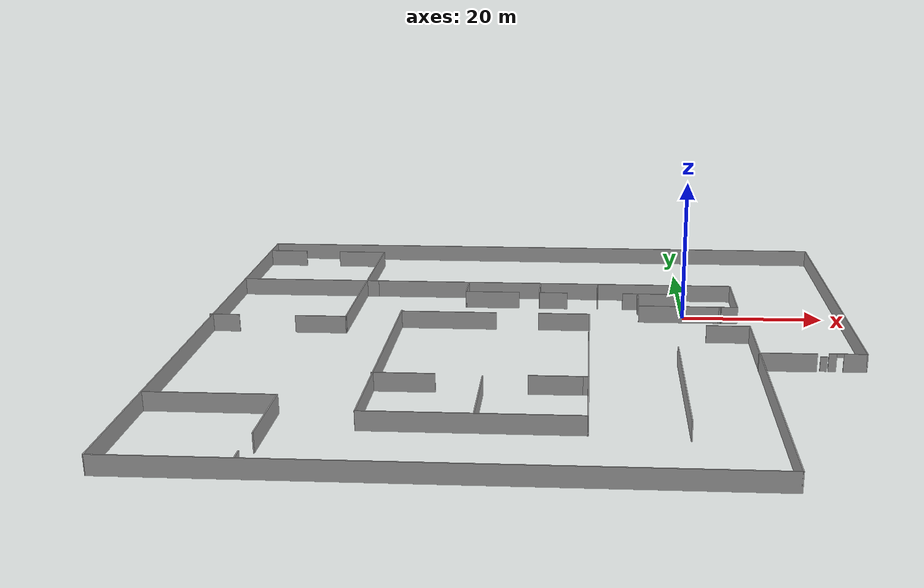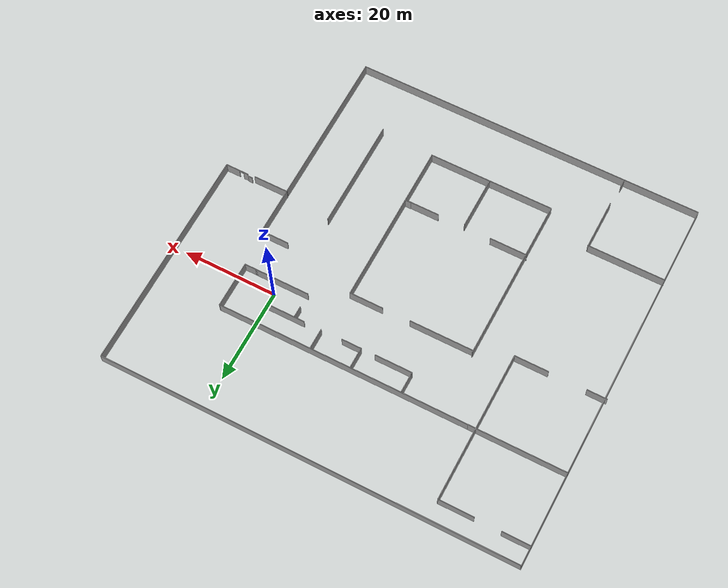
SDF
<?xml version='1.0'?>
<sdf version='1.6'>
  <model name='factory'>
    <pose frame=''>-22.3376 -13.1793 0 0 -0 0</pose>
    <link name='Door_1'>
      <collision name='Door_1_Collision'>
        <geometry>
          <box>
            <size>0.9 0.17 2</size>
          </box>
        </geometry>
        <pose frame=''>0 0 1 0 -0 0</pose>
      </collision>
      <visual name='Door_1_Visual'>
        <pose frame=''>0 0 1 0 -0 0</pose>
        <geometry>
          <box>
            <size>0.9 0.17 2</size>
          </box>
        </geometry>
        <material>
          <script>
            <uri>file://media/materials/scripts/gazebo.material</uri>
            <name>Gazebo/Grey</name>
          </script>
        </material>
      </visual>
      <pose frame=''>39.0036 -6.7146 0 0 -0 0</pose>
    </link>
    <link name='Wall_115'>
      <collision name='Wall_115_Collision'>
        <geometry>
          <box>
            <size>11.25 0.15 2.5</size>
          </box>
        </geometry>
        <pose frame=''>0 0 1.25 0 -0 0</pose>
      </collision>
      <visual name='Wall_115_Visual'>
        <pose frame=''>0 0 1.25 0 -0 0</pose>
        <geometry>
          <box>
            <size>11.25 0.15 2.5</size>
          </box>
        </geometry>
        <material>
          <script>
            <uri>file://media/materials/scripts/gazebo.material</uri>
            <name>Gazebo/Grey</name>
          </script>
          <ambient>1 1 1 1</ambient>
        </material>
        <meta>
          <layer>0</layer>
        </meta>
      </visual>
      <pose frame=''>-4.18518 -22.1969 0 0 -0 1.5708</pose>
    </link>
    <link name='Wall_117'>
      <collision name='Wall_117_Collision'>
        <geometry>
          <box>
            <size>1.25 0.15 2.5</size>
          </box>
        </geometry>
        <pose frame=''>0 0 1.25 0 -0 0</pose>
      </collision>
      <visual name='Wall_117_Visual'>
        <pose frame=''>0 0 1.25 0 -0 0</pose>
        <geometry>
          <box>
            <size>1.25 0.15 2.5</size>
          </box>
        </geometry>
        <material>
          <script>
            <uri>file://media/materials/scripts/gazebo.material</uri>
            <name>Gazebo/Grey</name>
          </script>
          <ambient>1 1 1 1</ambient>
        </material>
        <meta>
          <layer>0</layer>
        </meta>
      </visual>
      <pose frame=''>8.17817 -16.1796 0 0 -0 0</pose>
    </link>
    <link name='Wall_119'>
      <collision name='Wall_119_Collision'>
        <geometry>
          <box>
            <size>23.5 0.15 2.5</size>
          </box>
        </geometry>
        <pose frame=''>0 0 1.25 0 -0 0</pose>
      </collision>
      <visual name='Wall_119_Visual'>
        <pose frame=''>0 0 1.25 0 -0 0</pose>
        <geometry>
          <box>
            <size>23.5 0.15 2.5</size>
          </box>
        </geometry>
        <material>
          <script>
            <uri>file://media/materials/scripts/gazebo.material</uri>
            <name>Gazebo/Grey</name>
          </script>
          <ambient>1 1 1 1</ambient>
        </material>
        <meta>
          <layer>0</layer>
        </meta>
      </visual>
      <pose frame=''>20.426 -17.0257 0 0 -0 -1.5708</pose>
    </link>
    <link name='Wall_121'>
      <collision name='Wall_121_Collision'>
        <geometry>
          <box>
            <size>1.5 0.15 2.5</size>
          </box>
        </geometry>
        <pose frame=''>0 0 1.25 0 -0 0</pose>
      </collision>
      <visual name='Wall_121_Visual'>
        <pose frame=''>0 0 1.25 0 -0 0</pose>
        <geometry>
          <box>
            <size>1.5 0.15 2.5</size>
          </box>
        </geometry>
        <material>
          <script>
            <uri>file://media/materials/scripts/gazebo.material</uri>
            <name>Gazebo/Grey</name>
          </script>
          <ambient>1 1 1 1</ambient>
        </material>
        <meta>
          <layer>0</layer>
        </meta>
      </visual>
      <pose frame=''>-28.058 -39.6236 0 0 -0 1.5708</pose>
    </link>
    <link name='Wall_124'>
      <collision name='Wall_124_Collision'>
        <geometry>
          <box>
            <size>32.25 0.15 2.5</size>
          </box>
        </geometry>
        <pose frame=''>0 0 1.25 0 -0 0</pose>
      </collision>
      <visual name='Wall_124_Visual'>
        <pose frame=''>0 0 1.25 0 -0 0</pose>
        <geometry>
          <box>
            <size>32.25 0.15 2.5</size>
          </box>
        </geometry>
        <material>
          <script>
            <uri>file://media/materials/scripts/gazebo.material</uri>
            <name>Gazebo/Grey</name>
          </script>
          <ambient>1 1 1 1</ambient>
        </material>
        <meta>
          <layer>0</layer>
        </meta>
      </visual>
      <pose frame=''>-25.2313 20.2843 0 0 -0 -1.5708</pose>
    </link>
    <link name='Wall_125'>
      <collision name='Wall_125_Collision'>
        <geometry>
          <box>
            <size>7.25 0.15 2.5</size>
          </box>
        </geometry>
        <pose frame=''>0 0 1.25 0 -0 0</pose>
      </collision>
      <visual name='Wall_125_Visual'>
        <pose frame=''>0 0 1.25 0 -0 0</pose>
        <geometry>
          <box>
            <size>7.25 0.15 2.5</size>
          </box>
        </geometry>
        <material>
          <script>
            <uri>file://media/materials/scripts/gazebo.material</uri>
            <name>Gazebo/Grey</name>
          </script>
          <ambient>1 1 1 1</ambient>
        </material>
        <meta>
          <layer>0</layer>
        </meta>
      </visual>
      <pose frame=''>-28.7813 4.23431 0 0 -0 3.14159</pose>
    </link>
    <link name='Wall_127'>
      <collision name='Wall_127_Collision'>
        <geometry>
          <box>
            <size>4.25 0.15 2.5</size>
          </box>
        </geometry>
        <pose frame=''>0 0 1.25 0 -0 0</pose>
      </collision>
      <visual name='Wall_127_Visual'>
        <pose frame=''>0 0 1.25 0 -0 0</pose>
        <geometry>
          <box>
            <size>4.25 0.15 2.5</size>
          </box>
        </geometry>
        <material>
          <script>
            <uri>file://media/materials/scripts/gazebo.material</uri>
            <name>Gazebo/Grey</name>
          </script>
          <ambient>1 1 1 1</ambient>
        </material>
        <meta>
          <layer>0</layer>
        </meta>
      </visual>
      <pose frame=''>-42.4422 4.23281 0 0 -0 0</pose>
    </link>
    <link name='Wall_131'>
      <collision name='Wall_131_Collision'>
        <geometry>
          <box>
            <size>15.75 0.15 2.5</size>
          </box>
        </geometry>
        <pose frame=''>0 0 1.25 0 -0 0</pose>
      </collision>
      <visual name='Wall_131_Visual'>
        <pose frame=''>0 0 1.25 0 -0 0</pose>
        <geometry>
          <box>
            <size>15.75 0.15 2.5</size>
          </box>
        </geometry>
        <material>
          <script>
            <uri>file://media/materials/scripts/gazebo.material</uri>
            <name>Gazebo/Grey</name>
          </script>
          <ambient>1 1 1 1</ambient>
        </material>
        <meta>
          <layer>0</layer>
        </meta>
      </visual>
      <pose frame=''>-44.1078 28.625 0 0 -0 1.5708</pose>
    </link>
    <link name='Wall_132'>
      <collision name='Wall_132_Collision'>
        <geometry>
          <box>
            <size>6 0.15 2.5</size>
          </box>
        </geometry>
        <pose frame=''>0 0 1.25 0 -0 0</pose>
      </collision>
      <visual name='Wall_132_Visual'>
        <pose frame=''>0 0 1.25 0 -0 0</pose>
        <geometry>
          <box>
            <size>6 0.15 2.5</size>
          </box>
        </geometry>
        <material>
          <script>
            <uri>file://media/materials/scripts/gazebo.material</uri>
            <name>Gazebo/Grey</name>
          </script>
          <ambient>1 1 1 1</ambient>
        </material>
        <meta>
          <layer>0</layer>
        </meta>
      </visual>
      <pose frame=''>-41.1828 36.425 0 0 -0 0</pose>
    </link>
    <link name='Wall_134'>
      <collision name='Wall_134_Collision'>
        <geometry>
          <box>
            <size>7.5 0.15 2.5</size>
          </box>
        </geometry>
        <pose frame=''>0 0 1.25 0 -0 0</pose>
      </collision>
      <visual name='Wall_134_Visual'>
        <pose frame=''>0 0 1.25 0 -0 0</pose>
        <geometry>
          <box>
            <size>7.5 0.15 2.5</size>
          </box>
        </geometry>
        <material>
          <script>
            <uri>file://media/materials/scripts/gazebo.material</uri>
            <name>Gazebo/Grey</name>
          </script>
          <ambient>1 1 1 1</ambient>
        </material>
        <meta>
          <layer>0</layer>
        </meta>
      </visual>
      <pose frame=''>-28.9063 36.3343 0 0 -0 3.14159</pose>
    </link>
    <link name='Wall_136'>
      <collision name='Wall_136_Collision'>
        <geometry>
          <box>
            <size>4.25 0.15 2.5</size>
          </box>
        </geometry>
        <pose frame=''>0 0 1.25 0 -0 0</pose>
      </collision>
      <visual name='Wall_136_Visual'>
        <pose frame=''>0 0 1.25 0 -0 0</pose>
        <geometry>
          <box>
            <size>4.25 0.15 2.5</size>
          </box>
        </geometry>
        <material>
          <script>
            <uri>file://media/materials/scripts/gazebo.material</uri>
            <name>Gazebo/Grey</name>
          </script>
          <ambient>1 1 1 1</ambient>
        </material>
        <meta>
          <layer>0</layer>
        </meta>
      </visual>
      <pose frame=''>-44.1078 38.475 0 0 -0 1.5708</pose>
    </link>
    <link name='Wall_137'>
      <collision name='Wall_137_Collision'>
        <geometry>
          <box>
            <size>88.75 0.15 2.5</size>
          </box>
        </geometry>
        <pose frame=''>0 0 1.25 0 -0 0</pose>
      </collision>
      <visual name='Wall_137_Visual'>
        <pose frame=''>0 0 1.25 0 -0 0</pose>
        <geometry>
          <box>
            <size>88.75 0.15 2.5</size>
          </box>
        </geometry>
        <material>
          <script>
            <uri>file://media/materials/scripts/gazebo.material</uri>
            <name>Gazebo/Grey</name>
          </script>
          <ambient>1 1 1 1</ambient>
        </material>
        <meta>
          <layer>0</layer>
        </meta>
      </visual>
      <pose frame=''>0.192186 40.525 0 0 -0 0</pose>
    </link>
    <link name='Wall_138'>
      <collision name='Wall_138_Collision'>
        <geometry>
          <box>
            <size>47.5 0.15 2.5</size>
          </box>
        </geometry>
        <pose frame=''>0 0 1.25 0 -0 0</pose>
      </collision>
      <visual name='Wall_138_Visual'>
        <pose frame=''>0 0 1.25 0 -0 0</pose>
        <geometry>
          <box>
            <size>47.5 0.15 2.5</size>
          </box>
        </geometry>
        <material>
          <script>
            <uri>file://media/materials/scripts/gazebo.material</uri>
            <name>Gazebo/Grey</name>
          </script>
          <ambient>1 1 1 1</ambient>
        </material>
        <meta>
          <layer>0</layer>
        </meta>
      </visual>
      <pose frame=''>44.4922 16.85 0 0 -0 -1.5708</pose>
    </link>
    <link name='Wall_139'>
      <pose frame=''>42.0672 -6.825 0 0 -0 3.14159</pose>
      <visual name='Wall_139_Visual_0'>
        <pose frame=''>-0.960975 0 1.25 0 -0 0</pose>
        <geometry>
          <box>
            <size>3.07805 0.15 2.5</size>
          </box>
        </geometry>
        <material>
          <script>
            <uri>file://media/materials/scripts/gazebo.material</uri>
            <name>Gazebo/Grey</name>
          </script>
          <ambient>1 1 1 1</ambient>
        </material>
        <meta>
          <layer>0</layer>
        </meta>
      </visual>
      <collision name='Wall_139_Collision_0'>
        <geometry>
          <box>
            <size>3.07805 0.15 2.5</size>
          </box>
        </geometry>
        <pose frame=''>-0.960975 0 1.25 0 -0 0</pose>
      </collision>
      <visual name='Wall_139_Visual_1'>
        <pose frame=''>1.98903 0 1.25 0 -0 0</pose>
        <geometry>
          <box>
            <size>1.02195 0.15 2.5</size>
          </box>
        </geometry>
        <material>
          <script>
            <uri>file://media/materials/scripts/gazebo.material</uri>
            <name>Gazebo/Grey</name>
          </script>
          <ambient>1 1 1 1</ambient>
        </material>
        <meta>
          <layer>0</layer>
        </meta>
      </visual>
      <collision name='Wall_139_Collision_1'>
        <geometry>
          <box>
            <size>1.02195 0.15 2.5</size>
          </box>
        </geometry>
        <pose frame=''>1.98903 0 1.25 0 -0 0</pose>
      </collision>
      <visual name='Wall_139_Visual_2'>
        <pose frame=''>1.02805 0 2.25 0 -0 0</pose>
        <geometry>
          <box>
            <size>0.9 0.15 0.5</size>
          </box>
        </geometry>
        <material>
          <script>
            <uri>file://media/materials/scripts/gazebo.material</uri>
            <name>Gazebo/Grey</name>
          </script>
          <ambient>1 1 1 1</ambient>
        </material>
        <meta>
          <layer>0</layer>
        </meta>
      </visual>
      <collision name='Wall_139_Collision_2'>
        <geometry>
          <box>
            <size>0.9 0.15 0.5</size>
          </box>
        </geometry>
        <pose frame=''>1.02805 0 2.25 0 -0 0</pose>
      </collision>
    </link>
    <link name='Wall_141'>
      <collision name='Wall_141_Collision'>
        <geometry>
          <box>
            <size>7.5 0.15 2.5</size>
          </box>
        </geometry>
        <pose frame=''>0 0 1.25 0 -0 0</pose>
      </collision>
      <visual name='Wall_141_Visual'>
        <pose frame=''>0 0 1.25 0 -0 0</pose>
        <geometry>
          <box>
            <size>7.5 0.15 2.5</size>
          </box>
        </geometry>
        <material>
          <script>
            <uri>file://media/materials/scripts/gazebo.material</uri>
            <name>Gazebo/Grey</name>
          </script>
          <ambient>1 1 1 1</ambient>
        </material>
        <meta>
          <layer>0</layer>
        </meta>
      </visual>
      <pose frame=''>34.3559 -6.98725 0 0 -0 3.14159</pose>
    </link>
    <link name='Wall_28'>
      <collision name='Wall_28_Collision'>
        <geometry>
          <box>
            <size>8 0.15 2.5</size>
          </box>
        </geometry>
        <pose frame=''>0 0 1.25 0 -0 0</pose>
      </collision>
      <visual name='Wall_28_Visual'>
        <pose frame=''>0 0 1.25 0 -0 0</pose>
        <geometry>
          <box>
            <size>8 0.15 2.5</size>
          </box>
        </geometry>
        <material>
          <script>
            <uri>file://media/materials/scripts/gazebo.material</uri>
            <name>Gazebo/Grey</name>
          </script>
          <ambient>1 1 1 1</ambient>
        </material>
        <meta>
          <layer>0</layer>
        </meta>
      </visual>
      <pose frame=''>26.0172 20.825 0 0 -0 0</pose>
    </link>
    <link name='Wall_29'>
      <collision name='Wall_29_Collision'>
        <geometry>
          <box>
            <size>10 0.15 2.5</size>
          </box>
        </geometry>
        <pose frame=''>0 0 1.25 0 -0 0</pose>
      </collision>
      <visual name='Wall_29_Visual'>
        <pose frame=''>0 0 1.25 0 -0 0</pose>
        <geometry>
          <box>
            <size>10 0.15 2.5</size>
          </box>
        </geometry>
        <material>
          <script>
            <uri>file://media/materials/scripts/gazebo.material</uri>
            <name>Gazebo/Grey</name>
          </script>
          <ambient>1 1 1 1</ambient>
        </material>
        <meta>
          <layer>0</layer>
        </meta>
      </visual>
      <pose frame=''>29.9422 15.9 0 0 -0 -1.5708</pose>
    </link>
    <link name='Wall_30'>
      <collision name='Wall_30_Collision'>
        <geometry>
          <box>
            <size>2.5 0.15 2.5</size>
          </box>
        </geometry>
        <pose frame=''>0 0 1.25 0 -0 0</pose>
      </collision>
      <visual name='Wall_30_Visual'>
        <pose frame=''>0 0 1.25 0 -0 0</pose>
        <geometry>
          <box>
            <size>2.5 0.15 2.5</size>
          </box>
        </geometry>
        <material>
          <script>
            <uri>file://media/materials/scripts/gazebo.material</uri>
            <name>Gazebo/Grey</name>
          </script>
          <ambient>1 1 1 1</ambient>
        </material>
        <meta>
          <layer>0</layer>
        </meta>
      </visual>
      <pose frame=''>28.7672 10.975 0 0 -0 3.14159</pose>
    </link>
    <link name='Wall_33'>
      <collision name='Wall_33_Collision'>
        <geometry>
          <box>
            <size>4.5 0.15 2.5</size>
          </box>
        </geometry>
        <pose frame=''>0 0 1.25 0 -0 0</pose>
      </collision>
      <visual name='Wall_33_Visual'>
        <pose frame=''>0 0 1.25 0 -0 0</pose>
        <geometry>
          <box>
            <size>4.5 0.15 2.5</size>
          </box>
        </geometry>
        <material>
          <script>
            <uri>file://media/materials/scripts/gazebo.material</uri>
            <name>Gazebo/Grey</name>
          </script>
          <ambient>1 1 1 1</ambient>
        </material>
        <meta>
          <layer>0</layer>
        </meta>
      </visual>
      <pose frame=''>22.0922 18.65 0 0 -0 -1.5708</pose>
    </link>
    <link name='Wall_36'>
      <collision name='Wall_36_Collision'>
        <geometry>
          <box>
            <size>45.75 0.15 2.5</size>
          </box>
        </geometry>
        <pose frame=''>0 0 1.25 0 -0 0</pose>
      </collision>
      <visual name='Wall_36_Visual'>
        <pose frame=''>0 0 1.25 0 -0 0</pose>
        <geometry>
          <box>
            <size>45.75 0.15 2.5</size>
          </box>
        </geometry>
        <material>
          <script>
            <uri>file://media/materials/scripts/gazebo.material</uri>
            <name>Gazebo/Grey</name>
          </script>
          <ambient>1 1 1 1</ambient>
        </material>
        <meta>
          <layer>0</layer>
        </meta>
      </visual>
      <pose frame=''>-0.707813 20.825 0 0 -0 3.14159</pose>
    </link>
    <link name='Wall_37'>
      <collision name='Wall_37_Collision'>
        <geometry>
          <box>
            <size>20.75 0.15 2.5</size>
          </box>
        </geometry>
        <pose frame=''>0 0 1.25 0 -0 0</pose>
      </collision>
      <visual name='Wall_37_Visual'>
        <pose frame=''>0 0 1.25 0 -0 0</pose>
        <geometry>
          <box>
            <size>20.75 0.15 2.5</size>
          </box>
        </geometry>
        <material>
          <script>
            <uri>file://media/materials/scripts/gazebo.material</uri>
            <name>Gazebo/Grey</name>
          </script>
          <ambient>1 1 1 1</ambient>
        </material>
        <meta>
          <layer>0</layer>
        </meta>
      </visual>
      <pose frame=''>-33.8078 20.825 0 0 -0 3.14159</pose>
    </link>
    <link name='Wall_38'>
      <collision name='Wall_38_Collision'>
        <geometry>
          <box>
            <size>61.5 0.15 2.5</size>
          </box>
        </geometry>
        <pose frame=''>0 0 1.25 0 -0 0</pose>
      </collision>
      <visual name='Wall_38_Visual'>
        <pose frame=''>0 0 1.25 0 -0 0</pose>
        <geometry>
          <box>
            <size>61.5 0.15 2.5</size>
          </box>
        </geometry>
        <material>
          <script>
            <uri>file://media/materials/scripts/gazebo.material</uri>
            <name>Gazebo/Grey</name>
          </script>
          <ambient>1 1 1 1</ambient>
        </material>
        <meta>
          <layer>0</layer>
        </meta>
      </visual>
      <pose frame=''>-44.1078 -9.85 0 0 -0 -1.5708</pose>
    </link>
    <link name='Wall_39'>
      <collision name='Wall_39_Collision'>
        <geometry>
          <box>
            <size>75 0.15 2.5</size>
          </box>
        </geometry>
        <pose frame=''>0 0 1.25 0 -0 0</pose>
      </collision>
      <visual name='Wall_39_Visual'>
        <pose frame=''>0 0 1.25 0 -0 0</pose>
        <geometry>
          <box>
            <size>75 0.15 2.5</size>
          </box>
        </geometry>
        <material>
          <script>
            <uri>file://media/materials/scripts/gazebo.material</uri>
            <name>Gazebo/Grey</name>
          </script>
          <ambient>1 1 1 1</ambient>
        </material>
        <meta>
          <layer>0</layer>
        </meta>
      </visual>
      <pose frame=''>-6.68281 -40.525 0 0 -0 0</pose>
    </link>
    <link name='Wall_40'>
      <collision name='Wall_40_Collision'>
        <geometry>
          <box>
            <size>43.75 0.15 2.5</size>
          </box>
        </geometry>
        <pose frame=''>0 0 1.25 0 -0 0</pose>
      </collision>
      <visual name='Wall_40_Visual'>
        <pose frame=''>0 0 1.25 0 -0 0</pose>
        <geometry>
          <box>
            <size>43.75 0.15 2.5</size>
          </box>
        </geometry>
        <material>
          <script>
            <uri>file://media/materials/scripts/gazebo.material</uri>
            <name>Gazebo/Grey</name>
          </script>
          <ambient>1 1 1 1</ambient>
        </material>
        <meta>
          <layer>0</layer>
        </meta>
      </visual>
      <pose frame=''>30.7422 -18.725 0 0 -0 1.5708</pose>
    </link>
    <link name='Wall_41'>
      <collision name='Wall_41_Collision'>
        <geometry>
          <box>
            <size>6 0.15 2.5</size>
          </box>
        </geometry>
        <pose frame=''>0 0 1.25 0 -0 0</pose>
      </collision>
      <visual name='Wall_41_Visual'>
        <pose frame=''>0 0 1.25 0 -0 0</pose>
        <geometry>
          <box>
            <size>6 0.15 2.5</size>
          </box>
        </geometry>
        <material>
          <script>
            <uri>file://media/materials/scripts/gazebo.material</uri>
            <name>Gazebo/Grey</name>
          </script>
          <ambient>1 1 1 1</ambient>
        </material>
        <meta>
          <layer>0</layer>
        </meta>
      </visual>
      <pose frame=''>27.8172 3.075 0 0 -0 3.14159</pose>
    </link>
    <link name='Wall_43'>
      <collision name='Wall_43_Collision'>
        <geometry>
          <box>
            <size>8.5 0.15 2.5</size>
          </box>
        </geometry>
        <pose frame=''>0 0 1.25 0 -0 0</pose>
      </collision>
      <visual name='Wall_43_Visual'>
        <pose frame=''>0 0 1.25 0 -0 0</pose>
        <geometry>
          <box>
            <size>8.5 0.15 2.5</size>
          </box>
        </geometry>
        <material>
          <script>
            <uri>file://media/materials/scripts/gazebo.material</uri>
            <name>Gazebo/Grey</name>
          </script>
          <ambient>1 1 1 1</ambient>
        </material>
        <meta>
          <layer>0</layer>
        </meta>
      </visual>
      <pose frame=''>17.9172 16.475 0 0 -0 3.14159</pose>
    </link>
    <link name='Wall_46'>
      <collision name='Wall_46_Collision'>
        <geometry>
          <box>
            <size>11.5 0.15 2.5</size>
          </box>
        </geometry>
        <pose frame=''>0 0 1.25 0 -0 0</pose>
      </collision>
      <visual name='Wall_46_Visual'>
        <pose frame=''>0 0 1.25 0 -0 0</pose>
        <geometry>
          <box>
            <size>11.5 0.15 2.5</size>
          </box>
        </geometry>
        <material>
          <script>
            <uri>file://media/materials/scripts/gazebo.material</uri>
            <name>Gazebo/Grey</name>
          </script>
          <ambient>1 1 1 1</ambient>
        </material>
        <meta>
          <layer>0</layer>
        </meta>
      </visual>
      <pose frame=''>21.6221 10.9804 0 0 -0 3.14159</pose>
    </link>
    <link name='Wall_50'>
      <collision name='Wall_50_Collision'>
        <geometry>
          <box>
            <size>0.445165 0.15 2.5</size>
          </box>
        </geometry>
        <pose frame=''>0 0 1.25 0 -0 0</pose>
      </collision>
      <visual name='Wall_50_Visual'>
        <pose frame=''>0 0 1.25 0 -0 0</pose>
        <geometry>
          <box>
            <size>0.445165 0.15 2.5</size>
          </box>
        </geometry>
        <material>
          <script>
            <uri>file://media/materials/scripts/gazebo.material</uri>
            <name>Gazebo/Grey</name>
          </script>
          <ambient>1 1 1 1</ambient>
        </material>
        <meta>
          <layer>0</layer>
        </meta>
      </visual>
      <pose frame=''>27.4446 10.9777 0 0 -0 -0.018359</pose>
    </link>
    <link name='Wall_52'>
      <collision name='Wall_52_Collision'>
        <geometry>
          <box>
            <size>2.5 0.15 2.5</size>
          </box>
        </geometry>
        <pose frame=''>0 0 1.25 0 -0 0</pose>
      </collision>
      <visual name='Wall_52_Visual'>
        <pose frame=''>0 0 1.25 0 -0 0</pose>
        <geometry>
          <box>
            <size>2.5 0.15 2.5</size>
          </box>
        </geometry>
        <material>
          <script>
            <uri>file://media/materials/scripts/gazebo.material</uri>
            <name>Gazebo/Grey</name>
          </script>
          <ambient>1 1 1 1</ambient>
        </material>
        <meta>
          <layer>0</layer>
        </meta>
      </visual>
      <pose frame=''>15.8921 15.2787 0 0 -0 -1.5708</pose>
    </link>
    <link name='Wall_55'>
      <collision name='Wall_55_Collision'>
        <geometry>
          <box>
            <size>4.5 0.15 2.5</size>
          </box>
        </geometry>
        <pose frame=''>0 0 1.25 0 -0 0</pose>
      </collision>
      <visual name='Wall_55_Visual'>
        <pose frame=''>0 0 1.25 0 -0 0</pose>
        <geometry>
          <box>
            <size>4.5 0.15 2.5</size>
          </box>
        </geometry>
        <material>
          <script>
            <uri>file://media/materials/scripts/gazebo.material</uri>
            <name>Gazebo/Grey</name>
          </script>
          <ambient>1 1 1 1</ambient>
        </material>
        <meta>
          <layer>0</layer>
        </meta>
      </visual>
      <pose frame=''>10.0107 18.6413 0 0 -0 -1.5708</pose>
    </link>
    <link name='Wall_59'>
      <collision name='Wall_59_Collision'>
        <geometry>
          <box>
            <size>4.5 0.15 2.5</size>
          </box>
        </geometry>
        <pose frame=''>0 0 1.25 0 -0 0</pose>
      </collision>
      <visual name='Wall_59_Visual'>
        <pose frame=''>0 0 1.25 0 -0 0</pose>
        <geometry>
          <box>
            <size>4.5 0.15 2.5</size>
          </box>
        </geometry>
        <material>
          <script>
            <uri>file://media/materials/scripts/gazebo.material</uri>
            <name>Gazebo/Grey</name>
          </script>
          <ambient>1 1 1 1</ambient>
        </material>
        <meta>
          <layer>0</layer>
        </meta>
      </visual>
      <pose frame=''>1.35223 18.5395 0 0 -0 -1.5708</pose>
    </link>
    <link name='Wall_60'>
      <collision name='Wall_60_Collision'>
        <geometry>
          <box>
            <size>4.25 0.15 2.5</size>
          </box>
        </geometry>
        <pose frame=''>0 0 1.25 0 -0 0</pose>
      </collision>
      <visual name='Wall_60_Visual'>
        <pose frame=''>0 0 1.25 0 -0 0</pose>
        <geometry>
          <box>
            <size>4.25 0.15 2.5</size>
          </box>
        </geometry>
        <material>
          <script>
            <uri>file://media/materials/scripts/gazebo.material</uri>
            <name>Gazebo/Grey</name>
          </script>
          <ambient>1 1 1 1</ambient>
        </material>
        <meta>
          <layer>0</layer>
        </meta>
      </visual>
      <pose frame=''>3.40223 16.3645 0 0 -0 0</pose>
    </link>
    <link name='Wall_62'>
      <collision name='Wall_62_Collision'>
        <geometry>
          <box>
            <size>4.25 0.15 2.5</size>
          </box>
        </geometry>
        <pose frame=''>0 0 1.25 0 -0 0</pose>
      </collision>
      <visual name='Wall_62_Visual'>
        <pose frame=''>0 0 1.25 0 -0 0</pose>
        <geometry>
          <box>
            <size>4.25 0.15 2.5</size>
          </box>
        </geometry>
        <material>
          <script>
            <uri>file://media/materials/scripts/gazebo.material</uri>
            <name>Gazebo/Grey</name>
          </script>
          <ambient>1 1 1 1</ambient>
        </material>
        <meta>
          <layer>0</layer>
        </meta>
      </visual>
      <pose frame=''>-9.55385 18.7177 0 0 -0 -1.5708</pose>
    </link>
    <link name='Wall_63'>
      <collision name='Wall_63_Collision'>
        <geometry>
          <box>
            <size>0.5 0.15 2.5</size>
          </box>
        </geometry>
        <pose frame=''>0 0 1.25 0 -0 0</pose>
      </collision>
      <visual name='Wall_63_Visual'>
        <pose frame=''>0 0 1.25 0 -0 0</pose>
        <geometry>
          <box>
            <size>0.5 0.15 2.5</size>
          </box>
        </geometry>
        <material>
          <script>
            <uri>file://media/materials/scripts/gazebo.material</uri>
            <name>Gazebo/Grey</name>
          </script>
          <ambient>1 1 1 1</ambient>
        </material>
        <meta>
          <layer>0</layer>
        </meta>
      </visual>
      <pose frame=''>-9.55385 16.4927 0 0 -0 -1.5708</pose>
    </link>
    <link name='Wall_64'>
      <collision name='Wall_64_Collision'>
        <geometry>
          <box>
            <size>8 0.15 2.5</size>
          </box>
        </geometry>
        <pose frame=''>0 0 1.25 0 -0 0</pose>
      </collision>
      <visual name='Wall_64_Visual'>
        <pose frame=''>0 0 1.25 0 -0 0</pose>
        <geometry>
          <box>
            <size>8 0.15 2.5</size>
          </box>
        </geometry>
        <material>
          <script>
            <uri>file://media/materials/scripts/gazebo.material</uri>
            <name>Gazebo/Grey</name>
          </script>
          <ambient>1 1 1 1</ambient>
        </material>
        <meta>
          <layer>0</layer>
        </meta>
      </visual>
      <pose frame=''>-5.62885 16.3177 0 0 -0 0</pose>
    </link>
    <link name='Wall_66'>
      <collision name='Wall_66_Collision'>
        <geometry>
          <box>
            <size>35.25 0.15 2.5</size>
          </box>
        </geometry>
        <pose frame=''>0 0 1.25 0 -0 0</pose>
      </collision>
      <visual name='Wall_66_Visual'>
        <pose frame=''>0 0 1.25 0 -0 0</pose>
        <geometry>
          <box>
            <size>35.25 0.15 2.5</size>
          </box>
        </geometry>
        <material>
          <script>
            <uri>file://media/materials/scripts/gazebo.material</uri>
            <name>Gazebo/Grey</name>
          </script>
          <ambient>1 1 1 1</ambient>
        </material>
        <meta>
          <layer>0</layer>
        </meta>
      </visual>
      <pose frame=''>-17.8047 -10.3221 0 0 -0 -1.5708</pose>
    </link>
    <link name='Wall_67'>
      <collision name='Wall_67_Collision'>
        <geometry>
          <box>
            <size>26.75 0.15 2.5</size>
          </box>
        </geometry>
        <pose frame=''>0 0 1.25 0 -0 0</pose>
      </collision>
      <visual name='Wall_67_Visual'>
        <pose frame=''>0 0 1.25 0 -0 0</pose>
        <geometry>
          <box>
            <size>26.75 0.15 2.5</size>
          </box>
        </geometry>
        <material>
          <script>
            <uri>file://media/materials/scripts/gazebo.material</uri>
            <name>Gazebo/Grey</name>
          </script>
          <ambient>1 1 1 1</ambient>
        </material>
        <meta>
          <layer>0</layer>
        </meta>
      </visual>
      <pose frame=''>-4.50473 -27.8721 0 0 -0 0</pose>
    </link>
    <link name='Wall_68'>
      <collision name='Wall_68_Collision'>
        <geometry>
          <box>
            <size>35 0.15 2.5</size>
          </box>
        </geometry>
        <pose frame=''>0 0 1.25 0 -0 0</pose>
      </collision>
      <visual name='Wall_68_Visual'>
        <pose frame=''>0 0 1.25 0 -0 0</pose>
        <geometry>
          <box>
            <size>35 0.15 2.5</size>
          </box>
        </geometry>
        <material>
          <script>
            <uri>file://media/materials/scripts/gazebo.material</uri>
            <name>Gazebo/Grey</name>
          </script>
          <ambient>1 1 1 1</ambient>
        </material>
        <meta>
          <layer>0</layer>
        </meta>
      </visual>
      <pose frame=''>8.79528 -10.4471 0 0 -0 1.5708</pose>
    </link>
    <link name='Wall_69'>
      <collision name='Wall_69_Collision'>
        <geometry>
          <box>
            <size>7.25 0.15 2.5</size>
          </box>
        </geometry>
        <pose frame=''>0 0 1.25 0 -0 0</pose>
      </collision>
      <visual name='Wall_69_Visual'>
        <pose frame=''>0 0 1.25 0 -0 0</pose>
        <geometry>
          <box>
            <size>7.25 0.15 2.5</size>
          </box>
        </geometry>
        <material>
          <script>
            <uri>file://media/materials/scripts/gazebo.material</uri>
            <name>Gazebo/Grey</name>
          </script>
          <ambient>1 1 1 1</ambient>
        </material>
        <meta>
          <layer>0</layer>
        </meta>
      </visual>
      <pose frame=''>5.24527 6.97793 0 0 -0 3.14159</pose>
    </link>
    <link name='Wall_71'>
      <collision name='Wall_71_Collision'>
        <geometry>
          <box>
            <size>13.5 0.15 2.5</size>
          </box>
        </geometry>
        <pose frame=''>0 0 1.25 0 -0 0</pose>
      </collision>
      <visual name='Wall_71_Visual'>
        <pose frame=''>0 0 1.25 0 -0 0</pose>
        <geometry>
          <box>
            <size>13.5 0.15 2.5</size>
          </box>
        </geometry>
        <material>
          <script>
            <uri>file://media/materials/scripts/gazebo.material</uri>
            <name>Gazebo/Grey</name>
          </script>
          <ambient>1 1 1 1</ambient>
        </material>
        <meta>
          <layer>0</layer>
        </meta>
      </visual>
      <pose frame=''>-11.0165 6.92099 0 0 -0 0</pose>
    </link>
    <link name='Wall_73'>
      <collision name='Wall_73_Collision'>
        <geometry>
          <box>
            <size>16.5 0.15 2.5</size>
          </box>
        </geometry>
        <pose frame=''>0 0 1.25 0 -0 0</pose>
      </collision>
      <visual name='Wall_73_Visual'>
        <pose frame=''>0 0 1.25 0 -0 0</pose>
        <geometry>
          <box>
            <size>16.5 0.15 2.5</size>
          </box>
        </geometry>
        <material>
          <script>
            <uri>file://media/materials/scripts/gazebo.material</uri>
            <name>Gazebo/Grey</name>
          </script>
          <ambient>1 1 1 1</ambient>
        </material>
        <meta>
          <layer>0</layer>
        </meta>
      </visual>
      <pose frame=''>-35.9666 -23.6897 0 0 -0 0</pose>
    </link>
    <link name='Wall_74'>
      <collision name='Wall_74_Collision'>
        <geometry>
          <box>
            <size>10.75 0.15 2.5</size>
          </box>
        </geometry>
        <pose frame=''>0 0 1.25 0 -0 0</pose>
      </collision>
      <visual name='Wall_74_Visual'>
        <pose frame=''>0 0 1.25 0 -0 0</pose>
        <geometry>
          <box>
            <size>10.75 0.15 2.5</size>
          </box>
        </geometry>
        <material>
          <script>
            <uri>file://media/materials/scripts/gazebo.material</uri>
            <name>Gazebo/Grey</name>
          </script>
          <ambient>1 1 1 1</ambient>
        </material>
        <meta>
          <layer>0</layer>
        </meta>
      </visual>
      <pose frame=''>-27.7916 -28.9897 0 0 -0 -1.5708</pose>
    </link>
    <link name='Wall_81'>
      <collision name='Wall_81_Collision'>
        <geometry>
          <box>
            <size>8 0.15 2.5</size>
          </box>
        </geometry>
        <pose frame=''>0 0 1.25 0 -0 0</pose>
      </collision>
      <visual name='Wall_81_Visual'>
        <pose frame=''>0 0 1.25 0 -0 0</pose>
        <geometry>
          <box>
            <size>8 0.15 2.5</size>
          </box>
        </geometry>
        <material>
          <script>
            <uri>file://media/materials/scripts/gazebo.material</uri>
            <name>Gazebo/Grey</name>
          </script>
          <ambient>1 1 1 1</ambient>
        </material>
        <meta>
          <layer>0</layer>
        </meta>
      </visual>
      <pose frame=''>-14.05 -16.235 0 0 -0 0</pose>
    </link>
    <link name='Wall_83'>
      <collision name='Wall_83_Collision'>
        <geometry>
          <box>
            <size>6.75 0.15 2.5</size>
          </box>
        </geometry>
        <pose frame=''>0 0 1.25 0 -0 0</pose>
      </collision>
      <visual name='Wall_83_Visual'>
        <pose frame=''>0 0 1.25 0 -0 0</pose>
        <geometry>
          <box>
            <size>6.75 0.15 2.5</size>
          </box>
        </geometry>
        <material>
          <script>
            <uri>file://media/materials/scripts/gazebo.material</uri>
            <name>Gazebo/Grey</name>
          </script>
          <ambient>1 1 1 1</ambient>
        </material>
        <meta>
          <layer>0</layer>
        </meta>
      </visual>
      <pose frame=''>4.73914 -16.235 0 0 -0 3.14159</pose>
    </link>
    <static>1</static>
  </model>
</sdf>
